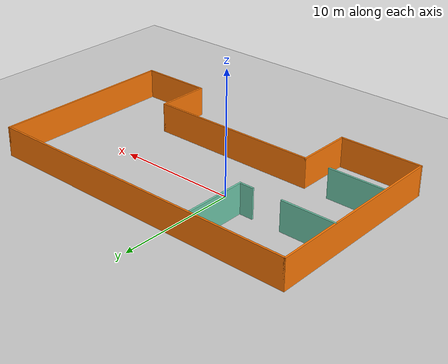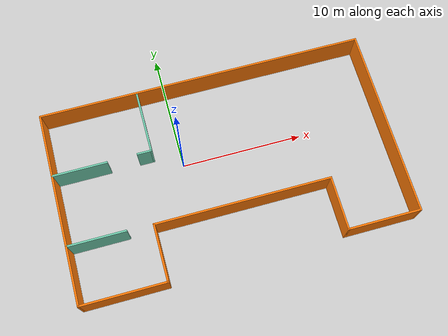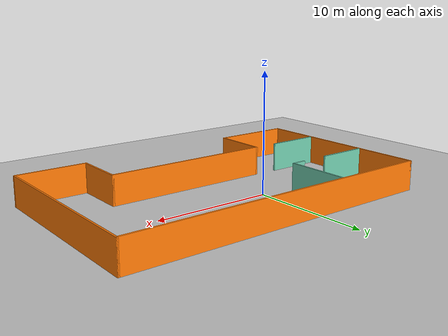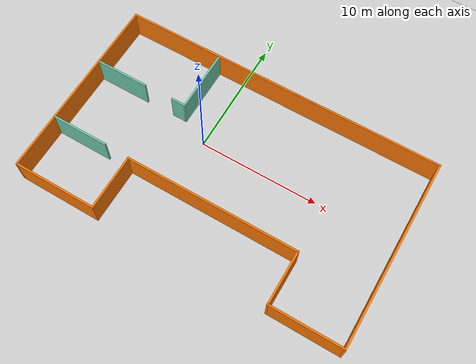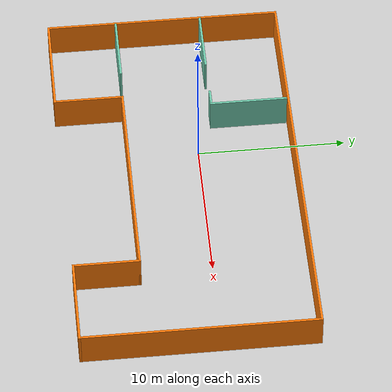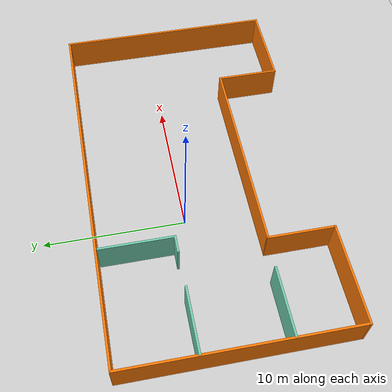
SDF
<sdf version="1.6">
 <world name="default">
  <plugin name="hello" filename="libhello.so"/>
  <light name="sun" type="directional">
   <pose>0 0 10 0 -0 0</pose>
   <diffuse>0.8 0.8 0.8 1</diffuse>
   <specular>0.2 0.2 0.2 1</specular>
   <attenuation>
    <range>1000</range>
    <constant>0.9</constant>
    <linear>0.01</linear>
    <quadratic>0.001</quadratic>
   </attenuation>
   <direction>-0.5 0.1 -0.9</direction>
  </light>
  <model name="ground_plane">
   <static>1</static>
   <link name="link">
    <collision name="collision">
     <geometry><plane><normal>0 0 1</normal><size>100 100</size></plane></geometry>
     <surface>
      <contact><collide_bitmask>65535</collide_bitmask></contact>
      <friction><ode><mu>100</mu><mu2>50</mu2></ode></friction>
     </surface>
    </collision>
    <visual name="visual">
     <cast_shadows>0</cast_shadows>
     <geometry><plane><normal>0 0 1</normal><size>100 100</size></plane></geometry>
     <material>
      <script><uri>file://media/materials/scripts/gazebo.material</uri><name>Gazebo/Grey</name></script>
     </material>
    </visual>
   </link>
  </model>
  <gravity>0 0 -9.8</gravity>
  <magnetic_field>6e-06 2.3e-05 -4.2e-05</magnetic_field>
  <atmosphere type="adiabatic"/>
  <physics name="default_physics" default="0" type="ode">
   <max_step_size>0.001</max_step_size>
   <real_time_factor>1</real_time_factor>
   <real_time_update_rate>1000</real_time_update_rate>
  </physics>
  <scene><ambient>0.4 0.4 0.4 1</ambient><background>0.7 0.7 0.7 1</background><shadows>1</shadows></scene>
  <spherical_coordinates>
   <surface_model>EARTH_WGS84</surface_model>
   <latitude_deg>0</latitude_deg>
   <longitude_deg>0</longitude_deg>
   <elevation>0</elevation>
   <heading_deg>0</heading_deg>
  </spherical_coordinates>
  <model name="model">
   <pose>3.21934 -1.54056 0 0 -0 0</pose>
   <link name="Wall_40">
    <collision name="Wall_40_Collision">
     <geometry><box><size>4.75 0.15 2.5</size></box></geometry>
     <pose>0 0 1.25 0 -0 0</pose>
    </collision>
    <visual name="Wall_40_Visual">
     <pose>0 0 1.25 0 -0 0</pose>
     <geometry><box><size>4.75 0.15 2.5</size></box></geometry>
     <material>
      <script><uri>file://media/materials/scripts/gazebo.material</uri><name>Gazebo/Grey</name></script>
      <ambient>0.996078 0.47451 0.0196078 1</ambient>
     </material>
     <meta><layer>0</layer></meta>
    </visual>
    <pose>-6.7 -5.625 0 0 -0 1.5708</pose>
   </link>
   <link name="Wall_42">
    <collision name="Wall_42_Collision">
     <geometry><box><size>4.5 0.15 2.5</size></box></geometry>
     <pose>0 0 1.25 0 -0 0</pose>
    </collision>
    <visual name="Wall_42_Visual">
     <pose>0 0 1.25 0 -0 0</pose>
     <geometry><box><size>4.5 0.15 2.5</size></box></geometry>
     <material>
      <script><uri>file://media/materials/scripts/gazebo.material</uri><name>Gazebo/Grey</name></script>
      <ambient>0.996078 0.47451 0.0196078 1</ambient>
     </material>
     <meta><layer>0</layer></meta>
    </visual>
    <pose>7.65 -5.5 0 0 0 -1.5708</pose>
   </link>
   <link name="Wall_49">
    <collision name="Wall_49_Collision">
     <geometry><box><size>7 0.15 2.5</size></box></geometry>
     <pose>0 0 1.25 0 -0 0</pose>
    </collision>
    <visual name="Wall_49_Visual">
     <pose>0 0 1.25 0 -0 0</pose>
     <geometry><box><size>7 0.15 2.5</size></box></geometry>
     <material>
      <script><uri>file://media/materials/scripts/gazebo.material</uri><name>Gazebo/Grey</name></script>
      <ambient>0.996078 0.47451 0.0196078 1</ambient>
     </material>
     <meta><layer>0</layer></meta>
    </visual>
    <pose>-10.125 -7.925 0 0 -0 3.14159</pose>
   </link>
   <link name="Wall_50">
    <collision name="Wall_50_Collision">
     <geometry><box><size>16 0.15 2.5</size></box></geometry>
     <pose>0 0 1.25 0 -0 0</pose>
    </collision>
    <visual name="Wall_50_Visual">
     <pose>0 0 1.25 0 -0 0</pose>
     <geometry><box><size>16 0.15 2.5</size></box></geometry>
     <material>
      <script><uri>file://media/materials/scripts/gazebo.material</uri><name>Gazebo/Grey</name></script>
      <ambient>0.996078 0.47451 0.0196078 1</ambient>
     </material>
     <meta><layer>0</layer></meta>
    </visual>
    <pose>-13.55 0 0 0 -0 1.5708</pose>
   </link>
   <link name="Wall_51">
    <collision name="Wall_51_Collision">
     <geometry><box><size>27.25 0.15 2.5</size></box></geometry>
     <pose>0 0 1.25 0 -0 0</pose>
    </collision>
    <visual name="Wall_51_Visual">
     <pose>0 0 1.25 0 -0 0</pose>
     <geometry><box><size>27.25 0.15 2.5</size></box></geometry>
     <material>
      <script><uri>file://media/materials/scripts/gazebo.material</uri><name>Gazebo/Grey</name></script>
      <ambient>0.996078 0.47451 0.0196078 1</ambient>
     </material>
     <meta><layer>0</layer></meta>
    </visual>
    <pose>0 7.925 0 0 -0 0</pose>
   </link>
   <link name="Wall_52">
    <collision name="Wall_52_Collision">
     <geometry><box><size>15.75 0.15 2.5</size></box></geometry>
     <pose>0 0 1.25 0 -0 0</pose>
    </collision>
    <visual name="Wall_52_Visual">
     <pose>0 0 1.25 0 -0 0</pose>
     <geometry><box><size>15.75 0.15 2.5</size></box></geometry>
     <material>
      <script><uri>file://media/materials/scripts/gazebo.material</uri><name>Gazebo/Grey</name></script>
      <ambient>0.996078 0.47451 0.0196078 1</ambient>
     </material>
     <meta><layer>0</layer></meta>
    </visual>
    <pose>13.55 0.125 0 0 0 -1.5708</pose>
   </link>
   <link name="Wall_55">
    <collision name="Wall_55_Collision">
     <geometry><box><size>6.05 0.15 2.5</size></box></geometry>
     <pose>0 0 1.25 0 -0 0</pose>
    </collision>
    <visual name="Wall_55_Visual">
     <pose>0 0 1.25 0 -0 0</pose>
     <geometry><box><size>6.05 0.15 2.5</size></box></geometry>
     <material>
      <script><uri>file://media/materials/scripts/gazebo.material</uri><name>Gazebo/Grey</name></script>
      <ambient>0.996078 0.47451 0.0196078 1</ambient>
     </material>
     <meta><layer>0</layer></meta>
    </visual>
    <pose>10.6 -7.675 0 0 -0 0</pose>
   </link>
   <link name="Wall_57">
    <collision name="Wall_57_Collision">
     <geometry><box><size>14.5 0.15 2.5</size></box></geometry>
     <pose>0 0 1.25 0 -0 0</pose>
    </collision>
    <visual name="Wall_57_Visual">
     <pose>0 0 1.25 0 -0 0</pose>
     <geometry><box><size>14.5 0.15 2.5</size></box></geometry>
     <material>
      <script><uri>file://media/materials/scripts/gazebo.material</uri><name>Gazebo/Grey</name></script>
      <ambient>0.996078 0.47451 0.0196078 1</ambient>
     </material>
     <meta><layer>0</layer></meta>
    </visual>
    <pose>0.475 -3.325 0 0 -0 0</pose>
   </link>
   <link name="Wall_63">
    <collision name="Wall_63_Collision">
     <geometry><box><size>4.75 0.15 2.5</size></box></geometry>
     <pose>0 0 1.25 0 -0 0</pose>
    </collision>
    <visual name="Wall_63_Visual">
     <pose>0 0 1.25 0 -0 0</pose>
     <geometry><box><size>4.75 0.15 2.5</size></box></geometry>
     <material>
      <script><uri>file://media/materials/scripts/gazebo.material</uri><name>Gazebo/Grey</name></script>
      <ambient>0.435294 0.796078 0.67451 1</ambient>
     </material>
     <meta><layer>0</layer></meta>
    </visual>
    <pose>-11.1821 -3.2534 0 0 -0 3.14159</pose>
   </link>
   <link name="Wall_67">
    <collision name="Wall_67_Collision">
     <geometry><box><size>4.5 0.15 2.5</size></box></geometry>
     <pose>0 0 1.25 0 -0 0</pose>
    </collision>
    <visual name="Wall_67_Visual">
     <pose>0 0 1.25 0 -0 0</pose>
     <geometry><box><size>4.5 0.15 2.5</size></box></geometry>
     <material>
      <script><uri>file://media/materials/scripts/gazebo.material</uri><name>Gazebo/Grey</name></script>
      <ambient>0.435294 0.796078 0.67451 1</ambient>
     </material>
     <meta><layer>0</layer></meta>
    </visual>
    <pose>-11.3274 2.61739 0 0 -0 0</pose>
   </link>
   <link name="Wall_69">
    <collision name="Wall_69_Collision">
     <geometry><box><size>1.25 0.15 2.5</size></box></geometry>
     <pose>0 0 1.25 0 -0 0</pose>
    </collision>
    <visual name="Wall_69_Visual">
     <pose>0 0 1.25 0 -0 0</pose>
     <geometry><box><size>1.25 0.15 2.5</size></box></geometry>
     <material>
      <script><uri>file://media/materials/scripts/gazebo.material</uri><name>Gazebo/Grey</name></script>
      <ambient>0.435294 0.796078 0.67451 1</ambient>
     </material>
     <meta><layer>0</layer></meta>
    </visual>
    <pose>-6.05738 2.65257 0 0 -0 0</pose>
   </link>
   <link name="Wall_71">
    <collision name="Wall_71_Collision">
     <geometry><box><size>5.25 0.15 2.5</size></box></geometry>
     <pose>0 0 1.25 0 -0 0</pose>
    </collision>
    <visual name="Wall_71_Visual">
     <pose>0 0 1.25 0 -0 0</pose>
     <geometry><box><size>5.25 0.15 2.5</size></box></geometry>
     <material>
      <script><uri>file://media/materials/scripts/gazebo.material</uri><name>Gazebo/Grey</name></script>
      <ambient>0.435294 0.796078 0.67451 1</ambient>
     </material>
     <meta><layer>0</layer></meta>
    </visual>
    <pose>-5.50738 5.20257 0 0 -0 1.5708</pose>
   </link>
   <static>1</static>
  </model>
 </world>
</sdf>
